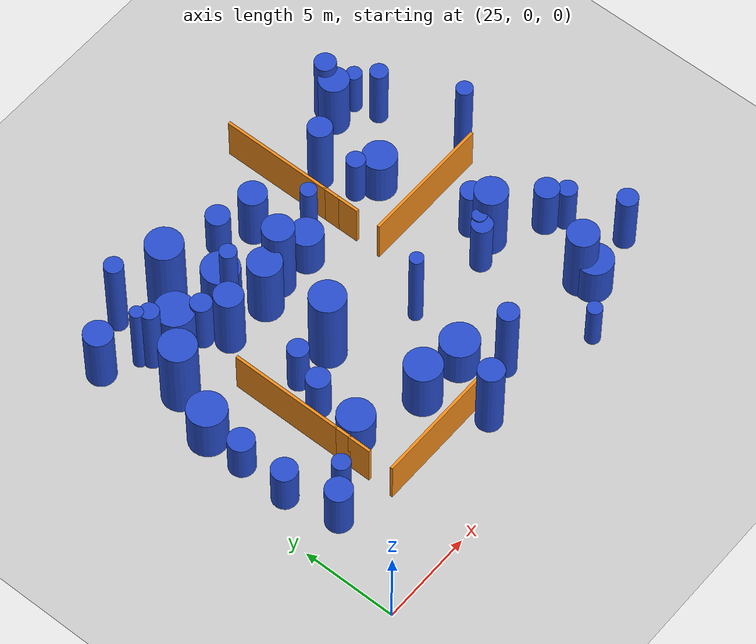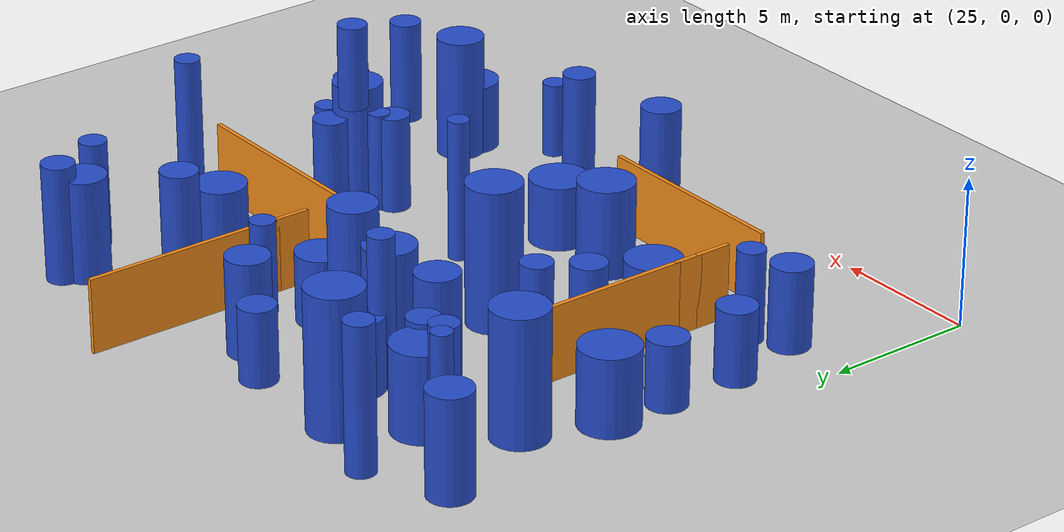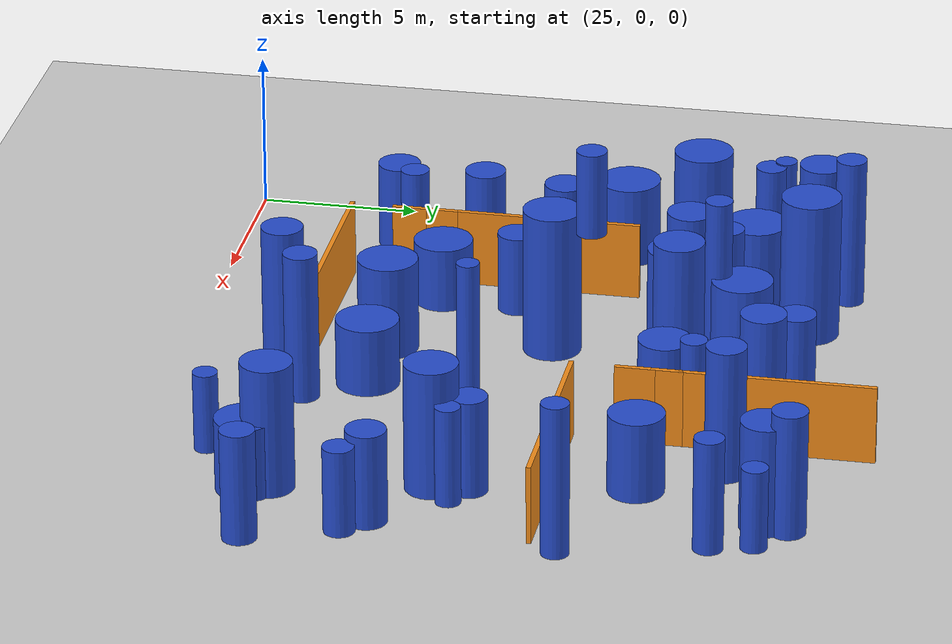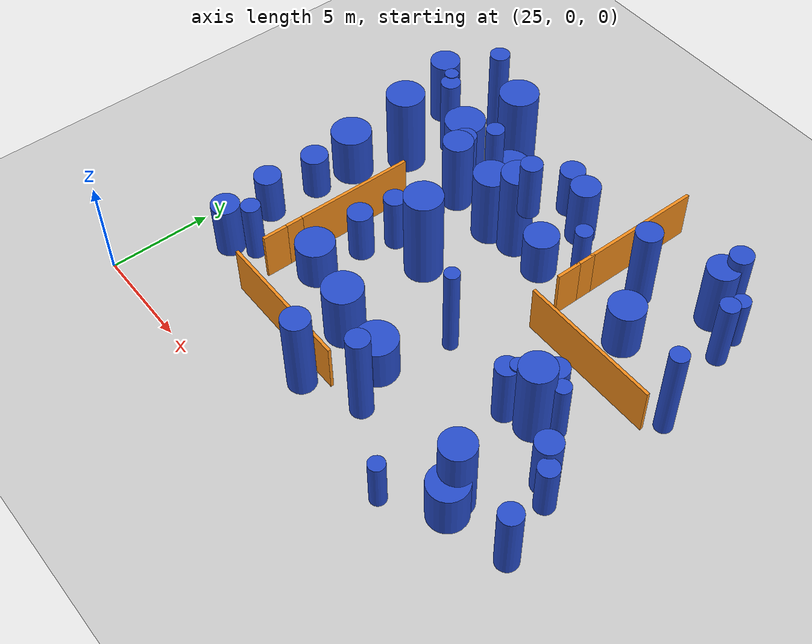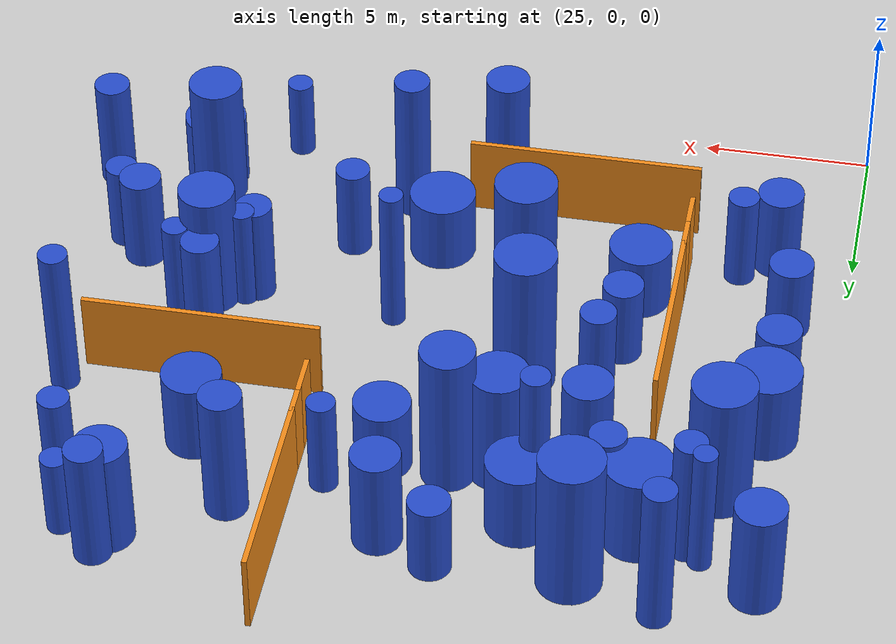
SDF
<sdf version="1.6">
 <world name="default">
  <model name="ground_plane">
   <static>1</static>
   <link name="link">
    <collision name="collision">
     <geometry><plane><normal>0 0 1</normal><size>100 100</size></plane></geometry>
     <surface><friction><ode><mu>100</mu><mu2>50</mu2></ode></friction></surface>
    </collision>
    <visual name="visual">
     <cast_shadows>0</cast_shadows>
     <geometry><plane><normal>0 0 1</normal><size>100 100</size></plane></geometry>
     <material>
      <script><uri>file://media/materials/scripts/gazebo.material</uri><name>Gazebo/Grey</name></script>
     </material>
    </visual>
   </link>
  </model>
  <model name="2">
   <static>0</static>
   <link name="link">
    <inertial>
     <mass>2</mass>
     <inertia><ixx>3.20586</ixx><ixy>0</ixy><ixz>0</ixz><iyy>3.20586</iyy><iyz>0</iyz><izz>0.636563</izz></inertia>
    </inertial>
    <collision name="collision">
     <geometry><cylinder><length>4.16238</length><radius>0.797849</radius></cylinder></geometry>
     <surface><contact><collide_without_contact>1</collide_without_contact></contact></surface>
    </collision>
    <visual name="visual">
     <geometry><cylinder><length>4.16238</length><radius>0.797849</radius></cylinder></geometry>
     <material>
      <script><uri>file://media/materials/scripts/gazebo.material</uri><name>Gazebo/Blue</name></script>
     </material>
    </visual>
    <gravity>0</gravity>
   </link>
   <pose>44.4662 4.48744 2.08119 0 -0 0</pose>
  </model>
  <model name="6">
   <static>0</static>
   <link name="link">
    <inertial>
     <mass>2</mass>
     <inertia><ixx>4.21567</ixx><ixy>0</ixy><ixz>0</ixz><iyy>4.21567</iyy><iyz>0</iyz><izz>0.18322</izz></inertia>
    </inertial>
    <collision name="collision">
     <geometry><cylinder><length>4.97437</length><radius>0.428042</radius></cylinder></geometry>
     <surface><contact><collide_without_contact>1</collide_without_contact></contact></surface>
    </collision>
    <visual name="visual">
     <geometry><cylinder><length>4.97437</length><radius>0.428042</radius></cylinder></geometry>
     <material>
      <script><uri>file://media/materials/scripts/gazebo.material</uri><name>Gazebo/Blue</name></script>
     </material>
    </visual>
    <gravity>0</gravity>
   </link>
   <pose>32.8393 16.173 2.48719 0 -0 0</pose>
  </model>
  <model name="8">
   <static>0</static>
   <link name="link">
    <inertial>
     <mass>2</mass>
     <inertia><ixx>3.88325</ixx><ixy>0</ixy><ixz>0</ixz><iyy>3.88325</iyy><iyz>0</iyz><izz>0.126882</izz></inertia>
    </inertial>
    <collision name="collision">
     <geometry><cylinder><length>4.78737</length><radius>0.356206</radius></cylinder></geometry>
     <surface><contact><collide_without_contact>1</collide_without_contact></contact></surface>
    </collision>
    <visual name="visual">
     <geometry><cylinder><length>4.78737</length><radius>0.356206</radius></cylinder></geometry>
     <material>
      <script><uri>file://media/materials/scripts/gazebo.material</uri><name>Gazebo/Blue</name></script>
     </material>
    </visual>
    <gravity>0</gravity>
   </link>
   <pose>38.1565 9.31549 2.39368 0 -0 0</pose>
  </model>
  <model name="10">
   <static>0</static>
   <link name="link">
    <inertial>
     <mass>2</mass>
     <inertia><ixx>3.24813</ixx><ixy>0</ixy><ixz>0</ixz><iyy>3.24813</iyy><iyz>0</iyz><izz>0.387761</izz></inertia>
    </inertial>
    <collision name="collision">
     <geometry><cylinder><length>4.28083</length><radius>0.622705</radius></cylinder></geometry>
     <surface><contact><collide_without_contact>1</collide_without_contact></contact></surface>
    </collision>
    <visual name="visual">
     <geometry><cylinder><length>4.28083</length><radius>0.622705</radius></cylinder></geometry>
     <material>
      <script><uri>file://media/materials/scripts/gazebo.material</uri><name>Gazebo/Blue</name></script>
     </material>
    </visual>
    <gravity>0</gravity>
   </link>
   <pose>41.2788 17.7031 2.14041 0 -0 0</pose>
  </model>
  <model name="16">
   <static>0</static>
   <link name="link">
    <inertial>
     <mass>2</mass>
     <inertia><ixx>1.16291</ixx><ixy>0</ixy><ixz>0</ixz><iyy>1.16291</iyy><iyz>0</iyz><izz>0.875446</izz></inertia>
    </inertial>
    <collision name="collision">
     <geometry><cylinder><length>2.08593</length><radius>0.935653</radius></cylinder></geometry>
     <surface><contact><collide_without_contact>1</collide_without_contact></contact></surface>
    </collision>
    <visual name="visual">
     <geometry><cylinder><length>2.08593</length><radius>0.935653</radius></cylinder></geometry>
     <material>
      <script><uri>file://media/materials/scripts/gazebo.material</uri><name>Gazebo/Blue</name></script>
     </material>
    </visual>
    <gravity>0</gravity>
   </link>
   <pose>31.1404 7.15658 1.04296 0 -0 0</pose>
  </model>
  <model name="26">
   <static>0</static>
   <link name="link">
    <inertial>
     <mass>2</mass>
     <inertia><ixx>1.56501</ixx><ixy>0</ixy><ixz>0</ixz><iyy>1.56501</iyy><iyz>0</iyz><izz>0.284058</izz></inertia>
    </inertial>
    <collision name="collision">
     <geometry><cylinder><length>2.92197</length><radius>0.532971</radius></cylinder></geometry>
     <surface><contact><collide_without_contact>1</collide_without_contact></contact></surface>
    </collision>
    <visual name="visual">
     <geometry><cylinder><length>2.92197</length><radius>0.532971</radius></cylinder></geometry>
     <material>
      <script><uri>file://media/materials/scripts/gazebo.material</uri><name>Gazebo/Blue</name></script>
     </material>
    </visual>
    <gravity>0</gravity>
   </link>
   <pose>31.8249 11.1624 1.46098 0 -0 0</pose>
  </model>
  <model name="28">
   <static>0</static>
   <link name="link">
    <inertial>
     <mass>2</mass>
     <inertia><ixx>2.79456</ixx><ixy>0</ixy><ixz>0</ixz><iyy>2.79456</iyy><iyz>0</iyz><izz>0.744168</izz></inertia>
    </inertial>
    <collision name="collision">
     <geometry><cylinder><length>3.81246</length><radius>0.862652</radius></cylinder></geometry>
     <surface><contact><collide_without_contact>1</collide_without_contact></contact></surface>
    </collision>
    <visual name="visual">
     <geometry><cylinder><length>3.81246</length><radius>0.862652</radius></cylinder></geometry>
     <material>
      <script><uri>file://media/materials/scripts/gazebo.material</uri><name>Gazebo/Blue</name></script>
     </material>
    </visual>
    <gravity>0</gravity>
   </link>
   <pose>34.0348 15.0048 1.90623 0 -0 0</pose>
  </model>
  <model name="30">
   <static>0</static>
   <link name="link">
    <inertial>
     <mass>2</mass>
     <inertia><ixx>2.2394</ixx><ixy>0</ixy><ixz>0</ixz><iyy>2.2394</iyy><iyz>0</iyz><izz>0.282543</izz></inertia>
    </inertial>
    <collision name="collision">
     <geometry><cylinder><length>3.54806</length><radius>0.531548</radius></cylinder></geometry>
     <surface><contact><collide_without_contact>1</collide_without_contact></contact></surface>
    </collision>
    <visual name="visual">
     <geometry><cylinder><length>3.54806</length><radius>0.531548</radius></cylinder></geometry>
     <material>
      <script><uri>file://media/materials/scripts/gazebo.material</uri><name>Gazebo/Blue</name></script>
     </material>
    </visual>
    <gravity>0</gravity>
   </link>
   <pose>47.7304 4.35367 1.77403 0 -0 0</pose>
  </model>
  <model name="36">
   <static>0</static>
   <link name="link">
    <inertial>
     <mass>2</mass>
     <inertia><ixx>4.09144</ixx><ixy>0</ixy><ixz>0</ixz><iyy>4.09144</iyy><iyz>0</iyz><izz>0.182254</izz></inertia>
    </inertial>
    <collision name="collision">
     <geometry><cylinder><length>4.89917</length><radius>0.426913</radius></cylinder></geometry>
     <surface><contact><collide_without_contact>1</collide_without_contact></contact></surface>
    </collision>
    <visual name="visual">
     <geometry><cylinder><length>4.89917</length><radius>0.426913</radius></cylinder></geometry>
     <material>
      <script><uri>file://media/materials/scripts/gazebo.material</uri><name>Gazebo/Blue</name></script>
     </material>
    </visual>
    <gravity>0</gravity>
   </link>
   <pose>47.0082 13.591 2.44958 0 -0 0</pose>
  </model>
  <model name="37">
   <static>0</static>
   <link name="link">
    <inertial>
     <mass>2</mass>
     <inertia><ixx>1.49639</ixx><ixy>0</ixy><ixz>0</ixz><iyy>1.49639</iyy><iyz>0</iyz><izz>0.93857</izz></inertia>
    </inertial>
    <collision name="collision">
     <geometry><cylinder><length>2.48246</length><radius>0.968798</radius></cylinder></geometry>
     <surface><contact><collide_without_contact>1</collide_without_contact></contact></surface>
    </collision>
    <visual name="visual">
     <geometry><cylinder><length>2.48246</length><radius>0.968798</radius></cylinder></geometry>
     <material>
      <script><uri>file://media/materials/scripts/gazebo.material</uri><name>Gazebo/Blue</name></script>
     </material>
    </visual>
    <gravity>0</gravity>
   </link>
   <pose>33.1347 16.9677 1.24123 0 -0 0</pose>
  </model>
  <model name="55">
   <static>0</static>
   <link name="link">
    <inertial>
     <mass>2</mass>
     <inertia><ixx>2.32083</ixx><ixy>0</ixy><ixz>0</ixz><iyy>2.32083</iyy><iyz>0</iyz><izz>0.590697</izz></inertia>
    </inertial>
    <collision name="collision">
     <geometry><cylinder><length>3.4861</length><radius>0.768568</radius></cylinder></geometry>
     <surface><contact><collide_without_contact>1</collide_without_contact></contact></surface>
    </collision>
    <visual name="visual">
     <geometry><cylinder><length>3.4861</length><radius>0.768568</radius></cylinder></geometry>
     <material>
      <script><uri>file://media/materials/scripts/gazebo.material</uri><name>Gazebo/Blue</name></script>
     </material>
    </visual>
    <gravity>0</gravity>
   </link>
   <pose>44.2646 19.3378 1.74305 0 -0 0</pose>
  </model>
  <model name="66">
   <static>0</static>
   <link name="link">
    <inertial>
     <mass>2</mass>
     <inertia><ixx>1.32349</ixx><ixy>0</ixy><ixz>0</ixz><iyy>1.32349</iyy><iyz>0</iyz><izz>0.364815</izz></inertia>
    </inertial>
    <collision name="collision">
     <geometry><cylinder><length>2.61658</length><radius>0.603999</radius></cylinder></geometry>
     <surface><contact><collide_without_contact>1</collide_without_contact></contact></surface>
    </collision>
    <visual name="visual">
     <geometry><cylinder><length>2.61658</length><radius>0.603999</radius></cylinder></geometry>
     <material>
      <script><uri>file://media/materials/scripts/gazebo.material</uri><name>Gazebo/Blue</name></script>
     </material>
    </visual>
    <gravity>0</gravity>
   </link>
   <pose>31.3296 9.54668 1.30829 0 -0 0</pose>
  </model>
  <model name="68">
   <static>0</static>
   <link name="link">
    <inertial>
     <mass>2</mass>
     <inertia><ixx>4.05064</ixx><ixy>0</ixy><ixz>0</ixz><iyy>4.05064</iyy><iyz>0</iyz><izz>0.285058</izz></inertia>
    </inertial>
    <collision name="collision">
     <geometry><cylinder><length>4.84238</length><radius>0.533908</radius></cylinder></geometry>
     <surface><contact><collide_without_contact>1</collide_without_contact></contact></surface>
    </collision>
    <visual name="visual">
     <geometry><cylinder><length>4.84238</length><radius>0.533908</radius></cylinder></geometry>
     <material>
      <script><uri>file://media/materials/scripts/gazebo.material</uri><name>Gazebo/Blue</name></script>
     </material>
    </visual>
    <gravity>0</gravity>
   </link>
   <pose>38.5073 4.20949 2.42119 0 -0 0</pose>
  </model>
  <model name="72">
   <static>0</static>
   <link name="link">
    <inertial>
     <mass>2</mass>
     <inertia><ixx>1.26226</ixx><ixy>0</ixy><ixz>0</ixz><iyy>1.26226</iyy><iyz>0</iyz><izz>0.691062</izz></inertia>
    </inertial>
    <collision name="collision">
     <geometry><cylinder><length>2.34529</length><radius>0.831302</radius></cylinder></geometry>
     <surface><contact><collide_without_contact>1</collide_without_contact></contact></surface>
    </collision>
    <visual name="visual">
     <geometry><cylinder><length>2.34529</length><radius>0.831302</radius></cylinder></geometry>
     <material>
      <script><uri>file://media/materials/scripts/gazebo.material</uri><name>Gazebo/Blue</name></script>
     </material>
    </visual>
    <gravity>0</gravity>
   </link>
   <pose>37.3059 15.2245 1.17264 0 -0 0</pose>
  </model>
  <model name="75">
   <static>0</static>
   <link name="link">
    <inertial>
     <mass>2</mass>
     <inertia><ixx>3.39002</ixx><ixy>0</ixy><ixz>0</ixz><iyy>3.39002</iyy><iyz>0</iyz><izz>0.436853</izz></inertia>
    </inertial>
    <collision name="collision">
     <geometry><cylinder><length>4.36229</length><radius>0.660948</radius></cylinder></geometry>
     <surface><contact><collide_without_contact>1</collide_without_contact></contact></surface>
    </collision>
    <visual name="visual">
     <geometry><cylinder><length>4.36229</length><radius>0.660948</radius></cylinder></geometry>
     <material>
      <script><uri>file://media/materials/scripts/gazebo.material</uri><name>Gazebo/Blue</name></script>
     </material>
    </visual>
    <gravity>0</gravity>
   </link>
   <pose>35.805 3.03949 2.18115 0 -0 0</pose>
  </model>
  <model name="77">
   <static>0</static>
   <link name="link">
    <inertial>
     <mass>2</mass>
     <inertia><ixx>3.04826</ixx><ixy>0</ixy><ixz>0</ixz><iyy>3.04826</iyy><iyz>0</iyz><izz>0.228469</izz></inertia>
    </inertial>
    <collision name="collision">
     <geometry><cylinder><length>4.19573</length><radius>0.477984</radius></cylinder></geometry>
     <surface><contact><collide_without_contact>1</collide_without_contact></contact></surface>
    </collision>
    <visual name="visual">
     <geometry><cylinder><length>4.19573</length><radius>0.477984</radius></cylinder></geometry>
     <material>
      <script><uri>file://media/materials/scripts/gazebo.material</uri><name>Gazebo/Blue</name></script>
     </material>
    </visual>
    <gravity>0</gravity>
   </link>
   <pose>28.4299 17.1628 2.09787 0 -0 0</pose>
  </model>
  <model name="78">
   <static>0</static>
   <link name="link">
    <inertial>
     <mass>2</mass>
     <inertia><ixx>4.04847</ixx><ixy>0</ixy><ixz>0</ixz><iyy>4.04847</iyy><iyz>0</iyz><izz>0.629911</izz></inertia>
    </inertial>
    <collision name="collision">
     <geometry><cylinder><length>4.73298</length><radius>0.793669</radius></cylinder></geometry>
     <surface><contact><collide_without_contact>1</collide_without_contact></contact></surface>
    </collision>
    <visual name="visual">
     <geometry><cylinder><length>4.73298</length><radius>0.793669</radius></cylinder></geometry>
     <material>
      <script><uri>file://media/materials/scripts/gazebo.material</uri><name>Gazebo/Blue</name></script>
     </material>
    </visual>
    <gravity>0</gravity>
   </link>
   <pose>35.4182 15.3407 2.36649 0 -0 0</pose>
  </model>
  <model name="90">
   <static>0</static>
   <link name="link">
    <inertial>
     <mass>2</mass>
     <inertia><ixx>2.81916</ixx><ixy>0</ixy><ixz>0</ixz><iyy>2.81916</iyy><iyz>0</iyz><izz>0.532219</izz></inertia>
    </inertial>
    <collision name="collision">
     <geometry><cylinder><length>3.91386</length><radius>0.729533</radius></cylinder></geometry>
     <surface><contact><collide_without_contact>1</collide_without_contact></contact></surface>
    </collision>
    <visual name="visual">
     <geometry><cylinder><length>3.91386</length><radius>0.729533</radius></cylinder></geometry>
     <material>
      <script><uri>file://media/materials/scripts/gazebo.material</uri><name>Gazebo/Blue</name></script>
     </material>
    </visual>
    <gravity>0</gravity>
   </link>
   <pose>31.5458 15.0812 1.95693 0 -0 0</pose>
  </model>
  <model name="92">
   <static>0</static>
   <link name="link">
    <inertial>
     <mass>2</mass>
     <inertia><ixx>2.81245</ixx><ixy>0</ixy><ixz>0</ixz><iyy>2.81245</iyy><iyz>0</iyz><izz>0.301857</izz></inertia>
    </inertial>
    <collision name="collision">
     <geometry><cylinder><length>3.99614</length><radius>0.549415</radius></cylinder></geometry>
     <surface><contact><collide_without_contact>1</collide_without_contact></contact></surface>
    </collision>
    <visual name="visual">
     <geometry><cylinder><length>3.99614</length><radius>0.549415</radius></cylinder></geometry>
     <material>
      <script><uri>file://media/materials/scripts/gazebo.material</uri><name>Gazebo/Blue</name></script>
     </material>
    </visual>
    <gravity>0</gravity>
   </link>
   <pose>44.5098 20.0687 1.99807 0 -0 0</pose>
  </model>
  <model name="96">
   <static>0</static>
   <link name="link">
    <inertial>
     <mass>2</mass>
     <inertia><ixx>1.17348</ixx><ixy>0</ixy><ixz>0</ixz><iyy>1.17348</iyy><iyz>0</iyz><izz>0.148193</izz></inertia>
    </inertial>
    <collision name="collision">
     <geometry><cylinder><length>2.56832</length><radius>0.384959</radius></cylinder></geometry>
     <surface><contact><collide_without_contact>1</collide_without_contact></contact></surface>
    </collision>
    <visual name="visual">
     <geometry><cylinder><length>2.56832</length><radius>0.384959</radius></cylinder></geometry>
     <material>
      <script><uri>file://media/materials/scripts/gazebo.material</uri><name>Gazebo/Blue</name></script>
     </material>
    </visual>
    <gravity>0</gravity>
   </link>
   <pose>42.4134 2.12337 1.28416 0 -0 0</pose>
  </model>
  <model name="107">
   <static>0</static>
   <link name="link">
    <inertial>
     <mass>2</mass>
     <inertia><ixx>1.72381</ixx><ixy>0</ixy><ixz>0</ixz><iyy>1.72381</iyy><iyz>0</iyz><izz>0.38773</izz></inertia>
    </inertial>
    <collision name="collision">
     <geometry><cylinder><length>3.0298</length><radius>0.62268</radius></cylinder></geometry>
     <surface><contact><collide_without_contact>1</collide_without_contact></contact></surface>
    </collision>
    <visual name="visual">
     <geometry><cylinder><length>3.0298</length><radius>0.62268</radius></cylinder></geometry>
     <material>
      <script><uri>file://media/materials/scripts/gazebo.material</uri><name>Gazebo/Blue</name></script>
     </material>
    </visual>
    <gravity>0</gravity>
   </link>
   <pose>46.0377 7.80321 1.5149 0 -0 0</pose>
  </model>
  <model name="113">
   <static>0</static>
   <link name="link">
    <inertial>
     <mass>2</mass>
     <inertia><ixx>1.79663</ixx><ixy>0</ixy><ixz>0</ixz><iyy>1.79663</iyy><iyz>0</iyz><izz>0.325162</izz></inertia>
    </inertial>
    <collision name="collision">
     <geometry><cylinder><length>3.13118</length><radius>0.57023</radius></cylinder></geometry>
     <surface><contact><collide_without_contact>1</collide_without_contact></contact></surface>
    </collision>
    <visual name="visual">
     <geometry><cylinder><length>3.13118</length><radius>0.57023</radius></cylinder></geometry>
     <material>
      <script><uri>file://media/materials/scripts/gazebo.material</uri><name>Gazebo/Blue</name></script>
     </material>
    </visual>
    <gravity>0</gravity>
   </link>
   <pose>43.6165 10.3969 1.56559 0 -0 0</pose>
  </model>
  <model name="116">
   <static>0</static>
   <link name="link">
    <inertial>
     <mass>2</mass>
     <inertia><ixx>1.63259</ixx><ixy>0</ixy><ixz>0</ixz><iyy>1.63259</iyy><iyz>0</iyz><izz>0.973707</izz></inertia>
    </inertial>
    <collision name="collision">
     <geometry><cylinder><length>2.62191</length><radius>0.986766</radius></cylinder></geometry>
     <surface><contact><collide_without_contact>1</collide_without_contact></contact></surface>
    </collision>
    <visual name="visual">
     <geometry><cylinder><length>2.62191</length><radius>0.986766</radius></cylinder></geometry>
     <material>
      <script><uri>file://media/materials/scripts/gazebo.material</uri><name>Gazebo/Blue</name></script>
     </material>
    </visual>
    <gravity>0</gravity>
   </link>
   <pose>26.8154 12.3832 1.31095 0 -0 0</pose>
  </model>
  <model name="120">
   <static>0</static>
   <link name="link">
    <inertial>
     <mass>2</mass>
     <inertia><ixx>1.23799</ixx><ixy>0</ixy><ixz>0</ixz><iyy>1.23799</iyy><iyz>0</iyz><izz>0.430058</izz></inertia>
    </inertial>
    <collision name="collision">
     <geometry><cylinder><length>2.47745</length><radius>0.655788</radius></cylinder></geometry>
     <surface><contact><collide_without_contact>1</collide_without_contact></contact></surface>
    </collision>
    <visual name="visual">
     <geometry><cylinder><length>2.47745</length><radius>0.655788</radius></cylinder></geometry>
     <material>
      <script><uri>file://media/materials/scripts/gazebo.material</uri><name>Gazebo/Blue</name></script>
     </material>
    </visual>
    <gravity>0</gravity>
   </link>
   <pose>26.6657 7.65278 1.23873 0 -0 0</pose>
  </model>
  <model name="121">
   <static>0</static>
   <link name="link">
    <inertial>
     <mass>2</mass>
     <inertia><ixx>4.12307</ixx><ixy>0</ixy><ixz>0</ixz><iyy>4.12307</iyy><iyz>0</iyz><izz>0.229508</izz></inertia>
    </inertial>
    <collision name="collision">
     <geometry><cylinder><length>4.90407</length><radius>0.47907</radius></cylinder></geometry>
     <surface><contact><collide_without_contact>1</collide_without_contact></contact></surface>
    </collision>
    <visual name="visual">
     <geometry><cylinder><length>4.90407</length><radius>0.47907</radius></cylinder></geometry>
     <material>
      <script><uri>file://media/materials/scripts/gazebo.material</uri><name>Gazebo/Blue</name></script>
     </material>
    </visual>
    <gravity>0</gravity>
   </link>
   <pose>28.9526 19.7656 2.45204 0 -0 0</pose>
  </model>
  <model name="123">
   <static>0</static>
   <link name="link">
    <inertial>
     <mass>2</mass>
     <inertia><ixx>1.70137</ixx><ixy>0</ixy><ixz>0</ixz><iyy>1.70137</iyy><iyz>0</iyz><izz>0.21026</izz></inertia>
    </inertial>
    <collision name="collision">
     <geometry><cylinder><length>3.09474</length><radius>0.458541</radius></cylinder></geometry>
     <surface><contact><collide_without_contact>1</collide_without_contact></contact></surface>
    </collision>
    <visual name="visual">
     <geometry><cylinder><length>3.09474</length><radius>0.458541</radius></cylinder></geometry>
     <material>
      <script><uri>file://media/materials/scripts/gazebo.material</uri><name>Gazebo/Blue</name></script>
     </material>
    </visual>
    <gravity>0</gravity>
   </link>
   <pose>28.322 5.685 1.54737 0 -0 0</pose>
  </model>
  <model name="124">
   <static>0</static>
   <link name="link">
    <inertial>
     <mass>2</mass>
     <inertia><ixx>1.4041</ixx><ixy>0</ixy><ixz>0</ixz><iyy>1.4041</iyy><iyz>0</iyz><izz>0.229798</izz></inertia>
    </inertial>
    <collision name="collision">
     <geometry><cylinder><length>2.78123</length><radius>0.479372</radius></cylinder></geometry>
     <surface><contact><collide_without_contact>1</collide_without_contact></contact></surface>
    </collision>
    <visual name="visual">
     <geometry><cylinder><length>2.78123</length><radius>0.479372</radius></cylinder></geometry>
     <material>
      <script><uri>file://media/materials/scripts/gazebo.material</uri><name>Gazebo/Blue</name></script>
     </material>
    </visual>
    <gravity>0</gravity>
   </link>
   <pose>46.7902 7.13736 1.39061 0 -0 0</pose>
  </model>
  <model name="125">
   <static>0</static>
   <link name="link">
    <inertial>
     <mass>2</mass>
     <inertia><ixx>3.0469</ixx><ixy>0</ixy><ixz>0</ixz><iyy>3.0469</iyy><iyz>0</iyz><izz>0.117307</izz></inertia>
    </inertial>
    <collision name="collision">
     <geometry><cylinder><length>4.23432</length><radius>0.342501</radius></cylinder></geometry>
     <surface><contact><collide_without_contact>1</collide_without_contact></contact></surface>
    </collision>
    <visual name="visual">
     <geometry><cylinder><length>4.23432</length><radius>0.342501</radius></cylinder></geometry>
     <material>
      <script><uri>file://media/materials/scripts/gazebo.material</uri><name>Gazebo/Blue</name></script>
     </material>
    </visual>
    <gravity>0</gravity>
   </link>
   <pose>27.9986 17.5734 2.11716 0 -0 0</pose>
  </model>
  <model name="129">
   <static>0</static>
   <link name="link">
    <inertial>
     <mass>2</mass>
     <inertia><ixx>2.30241</ixx><ixy>0</ixy><ixz>0</ixz><iyy>2.30241</iyy><iyz>0</iyz><izz>0.209643</izz></inertia>
    </inertial>
    <collision name="collision">
     <geometry><cylinder><length>3.63118</length><radius>0.457868</radius></cylinder></geometry>
     <surface><contact><collide_without_contact>1</collide_without_contact></contact></surface>
    </collision>
    <visual name="visual">
     <geometry><cylinder><length>3.63118</length><radius>0.457868</radius></cylinder></geometry>
     <material>
      <script><uri>file://media/materials/scripts/gazebo.material</uri><name>Gazebo/Blue</name></script>
     </material>
    </visual>
    <gravity>0</gravity>
   </link>
   <pose>45.9307 17.922 1.81559 0 -0 0</pose>
  </model>
  <model name="136">
   <static>0</static>
   <link name="link">
    <inertial>
     <mass>2</mass>
     <inertia><ixx>1.26179</ixx><ixy>0</ixy><ixz>0</ixz><iyy>1.26179</iyy><iyz>0</iyz><izz>0.374981</izz></inertia>
    </inertial>
    <collision name="collision">
     <geometry><cylinder><length>2.53885</length><radius>0.612357</radius></cylinder></geometry>
     <surface><contact><collide_without_contact>1</collide_without_contact></contact></surface>
    </collision>
    <visual name="visual">
     <geometry><cylinder><length>2.53885</length><radius>0.612357</radius></cylinder></geometry>
     <material>
      <script><uri>file://media/materials/scripts/gazebo.material</uri><name>Gazebo/Blue</name></script>
     </material>
    </visual>
    <gravity>0</gravity>
   </link>
   <pose>35.2739 18.9705 1.26943 0 -0 0</pose>
  </model>
  <model name="138">
   <static>0</static>
   <link name="link">
    <inertial>
     <mass>2</mass>
     <inertia><ixx>2.25397</ixx><ixy>0</ixy><ixz>0</ixz><iyy>2.25397</iyy><iyz>0</iyz><izz>0.541062</izz></inertia>
    </inertial>
    <collision name="collision">
     <geometry><cylinder><length>3.44973</length><radius>0.735569</radius></cylinder></geometry>
     <surface><contact><collide_without_contact>1</collide_without_contact></contact></surface>
    </collision>
    <visual name="visual">
     <geometry><cylinder><length>3.44973</length><radius>0.735569</radius></cylinder></geometry>
     <material>
      <script><uri>file://media/materials/scripts/gazebo.material</uri><name>Gazebo/Blue</name></script>
     </material>
    </visual>
    <gravity>0</gravity>
   </link>
   <pose>26.3564 18.5234 1.72486 0 -0 0</pose>
  </model>
  <model name="142">
   <static>0</static>
   <link name="link">
    <inertial>
     <mass>2</mass>
     <inertia><ixx>1.48896</ixx><ixy>0</ixy><ixz>0</ixz><iyy>1.48896</iyy><iyz>0</iyz><izz>0.754625</izz></inertia>
    </inertial>
    <collision name="collision">
     <geometry><cylinder><length>2.58261</length><radius>0.868692</radius></cylinder></geometry>
     <surface><contact><collide_without_contact>1</collide_without_contact></contact></surface>
    </collision>
    <visual name="visual">
     <geometry><cylinder><length>2.58261</length><radius>0.868692</radius></cylinder></geometry>
     <material>
      <script><uri>file://media/materials/scripts/gazebo.material</uri><name>Gazebo/Blue</name></script>
     </material>
    </visual>
    <gravity>0</gravity>
   </link>
   <pose>42.7426 15.2603 1.29131 0 -0 0</pose>
  </model>
  <model name="149">
   <static>0</static>
   <link name="link">
    <inertial>
     <mass>2</mass>
     <inertia><ixx>3.19204</ixx><ixy>0</ixy><ixz>0</ixz><iyy>3.19204</iyy><iyz>0</iyz><izz>0.69083</izz></inertia>
    </inertial>
    <collision name="collision">
     <geometry><cylinder><length>4.13277</length><radius>0.831162</radius></cylinder></geometry>
     <surface><contact><collide_without_contact>1</collide_without_contact></contact></surface>
    </collision>
    <visual name="visual">
     <geometry><cylinder><length>4.13277</length><radius>0.831162</radius></cylinder></geometry>
     <material>
      <script><uri>file://media/materials/scripts/gazebo.material</uri><name>Gazebo/Blue</name></script>
     </material>
    </visual>
    <gravity>0</gravity>
   </link>
   <pose>43.6358 9.26999 2.06638 0 -0 0</pose>
  </model>
  <model name="151">
   <static>0</static>
   <link name="link">
    <inertial>
     <mass>2</mass>
     <inertia><ixx>1.73489</ixx><ixy>0</ixy><ixz>0</ixz><iyy>1.73489</iyy><iyz>0</iyz><izz>0.173939</izz></inertia>
    </inertial>
    <collision name="collision">
     <geometry><cylinder><length>3.14445</length><radius>0.41706</radius></cylinder></geometry>
     <surface><contact><collide_without_contact>1</collide_without_contact></contact></surface>
    </collision>
    <visual name="visual">
     <geometry><cylinder><length>3.14445</length><radius>0.41706</radius></cylinder></geometry>
     <material>
      <script><uri>file://media/materials/scripts/gazebo.material</uri><name>Gazebo/Blue</name></script>
     </material>
    </visual>
    <gravity>0</gravity>
   </link>
   <pose>38.7905 16.3474 1.57222 0 -0 0</pose>
  </model>
  <model name="157">
   <static>0</static>
   <link name="link">
    <inertial>
     <mass>2</mass>
     <inertia><ixx>1.33129</ixx><ixy>0</ixy><ixz>0</ixz><iyy>1.33129</iyy><iyz>0</iyz><izz>0.217097</izz></inertia>
    </inertial>
    <collision name="collision">
     <geometry><cylinder><length>2.70858</length><radius>0.465937</radius></cylinder></geometry>
     <surface><contact><collide_without_contact>1</collide_without_contact></contact></surface>
    </collision>
    <visual name="visual">
     <geometry><cylinder><length>2.70858</length><radius>0.465937</radius></cylinder></geometry>
     <material>
      <script><uri>file://media/materials/scripts/gazebo.material</uri><name>Gazebo/Blue</name></script>
     </material>
    </visual>
    <gravity>0</gravity>
   </link>
   <pose>38.3978 13.1452 7.58153 0 -0 0</pose>
  </model>
  <model name="161">
   <static>0</static>
   <link name="link">
    <inertial>
     <mass>2</mass>
     <inertia><ixx>1.94302</ixx><ixy>0</ixy><ixz>0</ixz><iyy>1.94302</iyy><iyz>0</iyz><izz>0.289682</izz></inertia>
    </inertial>
    <collision name="collision">
     <geometry><cylinder><length>3.28467</length><radius>0.538221</radius></cylinder></geometry>
     <surface><contact><collide_without_contact>1</collide_without_contact></contact></surface>
    </collision>
    <visual name="visual">
     <geometry><cylinder><length>3.28467</length><radius>0.538221</radius></cylinder></geometry>
     <material>
      <script><uri>file://media/materials/scripts/gazebo.material</uri><name>Gazebo/Blue</name></script>
     </material>
    </visual>
    <gravity>0</gravity>
   </link>
   <pose>42.3718 8.77913 1.64233 0 -0 0</pose>
  </model>
  <model name="162">
   <static>0</static>
   <link name="link">
    <inertial>
     <mass>2</mass>
     <inertia><ixx>1.94466</ixx><ixy>0</ixy><ixz>0</ixz><iyy>1.94466</iyy><iyz>0</iyz><izz>0.138357</izz></inertia>
    </inertial>
    <collision name="collision">
     <geometry><cylinder><length>3.35453</length><radius>0.371964</radius></cylinder></geometry>
     <surface><contact><collide_without_contact>1</collide_without_contact></contact></surface>
    </collision>
    <visual name="visual">
     <geometry><cylinder><length>3.35453</length><radius>0.371964</radius></cylinder></geometry>
     <material>
      <script><uri>file://media/materials/scripts/gazebo.material</uri><name>Gazebo/Blue</name></script>
     </material>
    </visual>
    <gravity>0</gravity>
   </link>
   <pose>42.6403 9.15377 1.67727 0 -0 0</pose>
  </model>
  <model name="165">
   <static>0</static>
   <link name="link">
    <inertial>
     <mass>2</mass>
     <inertia><ixx>1.24681</ixx><ixy>0</ixy><ixz>0</ixz><iyy>1.24681</iyy><iyz>0</iyz><izz>0.164275</izz></inertia>
    </inertial>
    <collision name="collision">
     <geometry><cylinder><length>2.64349</length><radius>0.405309</radius></cylinder></geometry>
     <surface><contact><collide_without_contact>1</collide_without_contact></contact></surface>
    </collision>
    <visual name="visual">
     <geometry><cylinder><length>2.64349</length><radius>0.405309</radius></cylinder></geometry>
     <material>
      <script><uri>file://media/materials/scripts/gazebo.material</uri><name>Gazebo/Blue</name></script>
     </material>
    </visual>
    <gravity>0</gravity>
   </link>
   <pose>45.6412 19.2257 1.32174 0 -0 0</pose>
  </model>
  <model name="166">
   <static>0</static>
   <link name="link">
    <inertial>
     <mass>2</mass>
     <inertia><ixx>1.54037</ixx><ixy>0</ixy><ixz>0</ixz><iyy>1.54037</iyy><iyz>0</iyz><izz>0.465652</izz></inertia>
    </inertial>
    <collision name="collision">
     <geometry><cylinder><length>2.80094</length><radius>0.682387</radius></cylinder></geometry>
     <surface><contact><collide_without_contact>1</collide_without_contact></contact></surface>
    </collision>
    <visual name="visual">
     <geometry><cylinder><length>2.80094</length><radius>0.682387</radius></cylinder></geometry>
     <material>
      <script><uri>file://media/materials/scripts/gazebo.material</uri><name>Gazebo/Blue</name></script>
     </material>
    </visual>
    <gravity>0</gravity>
   </link>
   <pose>27.2829 4.96384 1.40047 0 -0 0</pose>
  </model>
  <model name="169">
   <static>0</static>
   <link name="link">
    <inertial>
     <mass>2</mass>
     <inertia><ixx>1.07216</ixx><ixy>0</ixy><ixz>0</ixz><iyy>1.07216</iyy><iyz>0</iyz><izz>0.445485</izz></inertia>
    </inertial>
    <collision name="collision">
     <geometry><cylinder><length>2.25755</length><radius>0.667447</radius></cylinder></geometry>
     <surface><contact><collide_without_contact>1</collide_without_contact></contact></surface>
    </collision>
    <visual name="visual">
     <geometry><cylinder><length>2.25755</length><radius>0.667447</radius></cylinder></geometry>
     <material>
      <script><uri>file://media/materials/scripts/gazebo.material</uri><name>Gazebo/Blue</name></script>
     </material>
    </visual>
    <gravity>0</gravity>
   </link>
   <pose>26.7186 10.2668 1.12877 0 -0 0</pose>
  </model>
  <model name="173">
   <static>0</static>
   <link name="link">
    <inertial>
     <mass>2</mass>
     <inertia><ixx>1.72707</ixx><ixy>0</ixy><ixz>0</ixz><iyy>1.72707</iyy><iyz>0</iyz><izz>0.295465</izz></inertia>
    </inertial>
    <collision name="collision">
     <geometry><cylinder><length>3.07832</length><radius>0.543567</radius></cylinder></geometry>
     <surface><contact><collide_without_contact>1</collide_without_contact></contact></surface>
    </collision>
    <visual name="visual">
     <geometry><cylinder><length>3.07832</length><radius>0.543567</radius></cylinder></geometry>
     <material>
      <script><uri>file://media/materials/scripts/gazebo.material</uri><name>Gazebo/Blue</name></script>
     </material>
    </visual>
    <gravity>0</gravity>
   </link>
   <pose>30.8153 16.1381 1.53916 0 -0 0</pose>
  </model>
  <model name="197">
   <static>0</static>
   <link name="link">
    <inertial>
     <mass>2</mass>
     <inertia><ixx>4.20898</ixx><ixy>0</ixy><ixz>0</ixz><iyy>4.20898</iyy><iyz>0</iyz><izz>0.835806</izz></inertia>
    </inertial>
    <collision name="collision">
     <geometry><cylinder><length>4.76933</length><radius>0.914225</radius></cylinder></geometry>
     <surface><contact><collide_without_contact>1</collide_without_contact></contact></surface>
    </collision>
    <visual name="visual">
     <geometry><cylinder><length>4.76933</length><radius>0.914225</radius></cylinder></geometry>
     <material>
      <script><uri>file://media/materials/scripts/gazebo.material</uri><name>Gazebo/Blue</name></script>
     </material>
    </visual>
    <gravity>0</gravity>
   </link>
   <pose>33.9429 11.1444 2.38466 0 -0 0</pose>
  </model>
  <model name="211">
   <static>0</static>
   <link name="link">
    <inertial>
     <mass>2</mass>
     <inertia><ixx>1.9057</ixx><ixy>0</ixy><ixz>0</ixz><iyy>1.9057</iyy><iyz>0</iyz><izz>0.986749</izz></inertia>
    </inertial>
    <collision name="collision">
     <geometry><cylinder><length>2.91101</length><radius>0.993353</radius></cylinder></geometry>
     <surface><contact><collide_without_contact>1</collide_without_contact></contact></surface>
    </collision>
    <visual name="visual">
     <geometry><cylinder><length>2.91101</length><radius>0.993353</radius></cylinder></geometry>
     <material>
      <script><uri>file://media/materials/scripts/gazebo.material</uri><name>Gazebo/Blue</name></script>
     </material>
    </visual>
    <gravity>0</gravity>
   </link>
   <pose>29.8451 16.9238 1.4555 0 -0 0</pose>
  </model>
  <model name="227">
   <static>0</static>
   <link name="link">
    <inertial>
     <mass>2</mass>
     <inertia><ixx>1.99138</ixx><ixy>0</ixy><ixz>0</ixz><iyy>1.99138</iyy><iyz>0</iyz><izz>0.902119</izz></inertia>
    </inertial>
    <collision name="collision">
     <geometry><cylinder><length>3.04005</length><radius>0.949799</radius></cylinder></geometry>
     <surface><contact><collide_without_contact>1</collide_without_contact></contact></surface>
    </collision>
    <visual name="visual">
     <geometry><cylinder><length>3.04005</length><radius>0.949799</radius></cylinder></geometry>
     <material>
      <script><uri>file://media/materials/scripts/gazebo.material</uri><name>Gazebo/Blue</name></script>
     </material>
    </visual>
    <gravity>0</gravity>
   </link>
   <pose>34.735 6.1163 1.52003 0 -0 0</pose>
  </model>
  <model name="229">
   <static>0</static>
   <link name="link">
    <inertial>
     <mass>2</mass>
     <inertia><ixx>1.75079</ixx><ixy>0</ixy><ixz>0</ixz><iyy>1.75079</iyy><iyz>0</iyz><izz>0.155097</izz></inertia>
    </inertial>
    <collision name="collision">
     <geometry><cylinder><length>3.16851</length><radius>0.393824</radius></cylinder></geometry>
     <surface><contact><collide_without_contact>1</collide_without_contact></contact></surface>
    </collision>
    <visual name="visual">
     <geometry><cylinder><length>3.16851</length><radius>0.393824</radius></cylinder></geometry>
     <material>
      <script><uri>file://media/materials/scripts/gazebo.material</uri><name>Gazebo/Blue</name></script>
     </material>
    </visual>
    <gravity>0</gravity>
   </link>
   <pose>44.4702 9.92476 1.58426 0 -0 0</pose>
  </model>
  <model name="238">
   <static>0</static>
   <link name="link">
    <inertial>
     <mass>2</mass>
     <inertia><ixx>1.28037</ixx><ixy>0</ixy><ixz>0</ixz><iyy>1.28037</iyy><iyz>0</iyz><izz>0.973419</izz></inertia>
    </inertial>
    <collision name="collision">
     <geometry><cylinder><length>2.18219</length><radius>0.98662</radius></cylinder></geometry>
     <surface><contact><collide_without_contact>1</collide_without_contact></contact></surface>
    </collision>
    <visual name="visual">
     <geometry><cylinder><length>2.18219</length><radius>0.98662</radius></cylinder></geometry>
     <material>
      <script><uri>file://media/materials/scripts/gazebo.material</uri><name>Gazebo/Blue</name></script>
     </material>
    </visual>
    <gravity>0</gravity>
   </link>
   <pose>37.2671 5.99409 1.09109 0 -0 0</pose>
  </model>
  <model name="243">
   <static>0</static>
   <link name="link">
    <inertial>
     <mass>2</mass>
     <inertia><ixx>2.03166</ixx><ixy>0</ixy><ixz>0</ixz><iyy>2.03166</iyy><iyz>0</iyz><izz>0.515448</izz></inertia>
    </inertial>
    <collision name="collision">
     <geometry><cylinder><length>3.26246</length><radius>0.717947</radius></cylinder></geometry>
     <surface><contact><collide_without_contact>1</collide_without_contact></contact></surface>
    </collision>
    <visual name="visual">
     <geometry><cylinder><length>3.26246</length><radius>0.717947</radius></cylinder></geometry>
     <material>
      <script><uri>file://media/materials/scripts/gazebo.material</uri><name>Gazebo/Blue</name></script>
     </material>
    </visual>
    <gravity>0</gravity>
   </link>
   <pose>36.8996 18.18 1.63123 0 -0 0</pose>
  </model>
  <model name="246">
   <static>0</static>
   <link name="link">
    <inertial>
     <mass>2</mass>
     <inertia><ixx>1.35548</ixx><ixy>0</ixy><ixz>0</ixz><iyy>1.35548</iyy><iyz>0</iyz><izz>0.859848</izz></inertia>
    </inertial>
    <collision name="collision">
     <geometry><cylinder><length>2.35655</length><radius>0.92728</radius></cylinder></geometry>
     <surface><contact><collide_without_contact>1</collide_without_contact></contact></surface>
    </collision>
    <visual name="visual">
     <geometry><cylinder><length>2.35655</length><radius>0.92728</radius></cylinder></geometry>
     <material>
      <script><uri>file://media/materials/scripts/gazebo.material</uri><name>Gazebo/Blue</name></script>
     </material>
    </visual>
    <gravity>0</gravity>
   </link>
   <pose>44.6874 3.85991 1.17828 0 -0 0</pose>
  </model>
  <model name="247">
   <static>0</static>
   <link name="link">
    <inertial>
     <mass>2</mass>
     <inertia><ixx>4.09541</ixx><ixy>0</ixy><ixz>0</ixz><iyy>4.09541</iyy><iyz>0</iyz><izz>0.884634</izz></inertia>
    </inertial>
    <collision name="collision">
     <geometry><cylinder><length>4.68172</length><radius>0.94055</radius></cylinder></geometry>
     <surface><contact><collide_without_contact>1</collide_without_contact></contact></surface>
    </collision>
    <visual name="visual">
     <geometry><cylinder><length>4.68172</length><radius>0.94055</radius></cylinder></geometry>
     <material>
      <script><uri>file://media/materials/scripts/gazebo.material</uri><name>Gazebo/Blue</name></script>
     </material>
    </visual>
    <gravity>0</gravity>
   </link>
   <pose>31.4281 18.8492 2.34086 0 -0 0</pose>
  </model>
  <model name="249">
   <static>0</static>
   <link name="link">
    <inertial>
     <mass>2</mass>
     <inertia><ixx>3.49119</ixx><ixy>0</ixy><ixz>0</ixz><iyy>3.49119</iyy><iyz>0</iyz><izz>0.872611</izz></inertia>
    </inertial>
    <collision name="collision">
     <geometry><cylinder><length>4.28127</length><radius>0.934137</radius></cylinder></geometry>
     <surface><contact><collide_without_contact>1</collide_without_contact></contact></surface>
    </collision>
    <visual name="visual">
     <geometry><cylinder><length>4.28127</length><radius>0.934137</radius></cylinder></geometry>
     <material>
      <script><uri>file://media/materials/scripts/gazebo.material</uri><name>Gazebo/Blue</name></script>
     </material>
    </visual>
    <gravity>0</gravity>
   </link>
   <pose>27.8081 14.9129 2.14064 0 -0 0</pose>
  </model>
  <model name="wall_0_clone_3">
   <pose>33.289 8.53829 0 0 -0 3.13838</pose>
   <link name="Wall_10">
    <collision name="Wall_10_Collision">
     <geometry><box><size>1 0.15 2.5</size></box></geometry>
     <pose>0 0 1.25 0 -0 0</pose>
    </collision>
    <visual name="Wall_10_Visual">
     <pose>0 0 1.25 0 -0 0</pose>
     <geometry><box><size>1 0.15 2.5</size></box></geometry>
     <material>
      <script><uri>file://media/materials/scripts/gazebo.material</uri><name>Gazebo/Orange</name></script>
      <ambient>1 1 1 1</ambient>
     </material>
     <meta><layer>0</layer></meta>
    </visual>
    <pose>3.41104 1.67587 0 0 -0 -1.5708</pose>
   </link>
   <link name="Wall_11">
    <collision name="Wall_11_Collision">
     <geometry><box><size>6 0.15 2.5</size></box></geometry>
     <pose>0 0 1.25 0 -0 0</pose>
    </collision>
    <visual name="Wall_11_Visual">
     <pose>0 0 1.25 0 -0 0</pose>
     <geometry><box><size>6 0.15 2.5</size></box></geometry>
     <material>
      <script><uri>file://media/materials/scripts/gazebo.material</uri><name>Gazebo/Orange</name></script>
      <ambient>1 1 1 1</ambient>
     </material>
     <meta><layer>0</layer></meta>
    </visual>
    <pose>3.41104 -1.67413 0 0 -0 -1.5708</pose>
   </link>
   <link name="Wall_6">
    <collision name="Wall_6_Collision">
     <geometry><box><size>7 0.15 2.5</size></box></geometry>
     <pose>0 0 1.25 0 -0 0</pose>
    </collision>
    <visual name="Wall_6_Visual">
     <pose>0 0 1.25 0 -0 0</pose>
     <geometry><box><size>7 0.15 2.5</size></box></geometry>
     <material>
      <script><uri>file://media/materials/scripts/gazebo.material</uri><name>Gazebo/Orange</name></script>
      <ambient>1 1 1 1</ambient>
     </material>
     <meta><layer>0</layer></meta>
    </visual>
    <pose>-0 4.59914 0 0 -0 0</pose>
   </link>
   <link name="Wall_9">
    <collision name="Wall_9_Collision">
     <geometry><box><size>1.25 0.15 2.5</size></box></geometry>
     <pose>0 0 1.25 0 -0 0</pose>
    </collision>
    <visual name="Wall_9_Visual">
     <pose>0 0 1.25 0 -0 0</pose>
     <geometry><box><size>1.25 0.15 2.5</size></box></geometry>
     <material>
      <script><uri>file://media/materials/scripts/gazebo.material</uri><name>Gazebo/Orange</name></script>
      <ambient>1 1 1 1</ambient>
     </material>
     <meta><layer>0</layer></meta>
    </visual>
    <pose>3.41104 2.65087 0 0 -0 -1.5708</pose>
   </link>
   <static>1</static>
  </model>
  <model name="wall_0_clone_4">
   <pose>43.0961 17.3423 0 0 -0 3.13838</pose>
   <link name="Wall_10">
    <collision name="Wall_10_Collision">
     <geometry><box><size>1 0.15 2.5</size></box></geometry>
     <pose>0 0 1.25 0 -0 0</pose>
    </collision>
    <visual name="Wall_10_Visual">
     <pose>0 0 1.25 0 -0 0</pose>
     <geometry><box><size>1 0.15 2.5</size></box></geometry>
     <material>
      <script><uri>file://media/materials/scripts/gazebo.material</uri><name>Gazebo/Orange</name></script>
      <ambient>1 1 1 1</ambient>
     </material>
     <meta><layer>0</layer></meta>
    </visual>
    <pose>3.41104 1.67587 0 0 -0 -1.5708</pose>
   </link>
   <link name="Wall_11">
    <collision name="Wall_11_Collision">
     <geometry><box><size>6 0.15 2.5</size></box></geometry>
     <pose>0 0 1.25 0 -0 0</pose>
    </collision>
    <visual name="Wall_11_Visual">
     <pose>0 0 1.25 0 -0 0</pose>
     <geometry><box><size>6 0.15 2.5</size></box></geometry>
     <material>
      <script><uri>file://media/materials/scripts/gazebo.material</uri><name>Gazebo/Orange</name></script>
      <ambient>1 1 1 1</ambient>
     </material>
     <meta><layer>0</layer></meta>
    </visual>
    <pose>3.41104 -1.67413 0 0 -0 -1.5708</pose>
   </link>
   <link name="Wall_6">
    <collision name="Wall_6_Collision">
     <geometry><box><size>7 0.15 2.5</size></box></geometry>
     <pose>0 0 1.25 0 -0 0</pose>
    </collision>
    <visual name="Wall_6_Visual">
     <pose>0 0 1.25 0 -0 0</pose>
     <geometry><box><size>7 0.15 2.5</size></box></geometry>
     <material>
      <script><uri>file://media/materials/scripts/gazebo.material</uri><name>Gazebo/Orange</name></script>
      <ambient>1 1 1 1</ambient>
     </material>
     <meta><layer>0</layer></meta>
    </visual>
    <pose>-0 4.59914 0 0 -0 0</pose>
   </link>
   <link name="Wall_9">
    <collision name="Wall_9_Collision">
     <geometry><box><size>1.25 0.15 2.5</size></box></geometry>
     <pose>0 0 1.25 0 -0 0</pose>
    </collision>
    <visual name="Wall_9_Visual">
     <pose>0 0 1.25 0 -0 0</pose>
     <geometry><box><size>1.25 0.15 2.5</size></box></geometry>
     <material>
      <script><uri>file://media/materials/scripts/gazebo.material</uri><name>Gazebo/Orange</name></script>
      <ambient>1 1 1 1</ambient>
     </material>
     <meta><layer>0</layer></meta>
    </visual>
    <pose>3.41104 2.65087 0 0 -0 -1.5708</pose>
   </link>
   <static>1</static>
  </model>
 </world>
</sdf>
